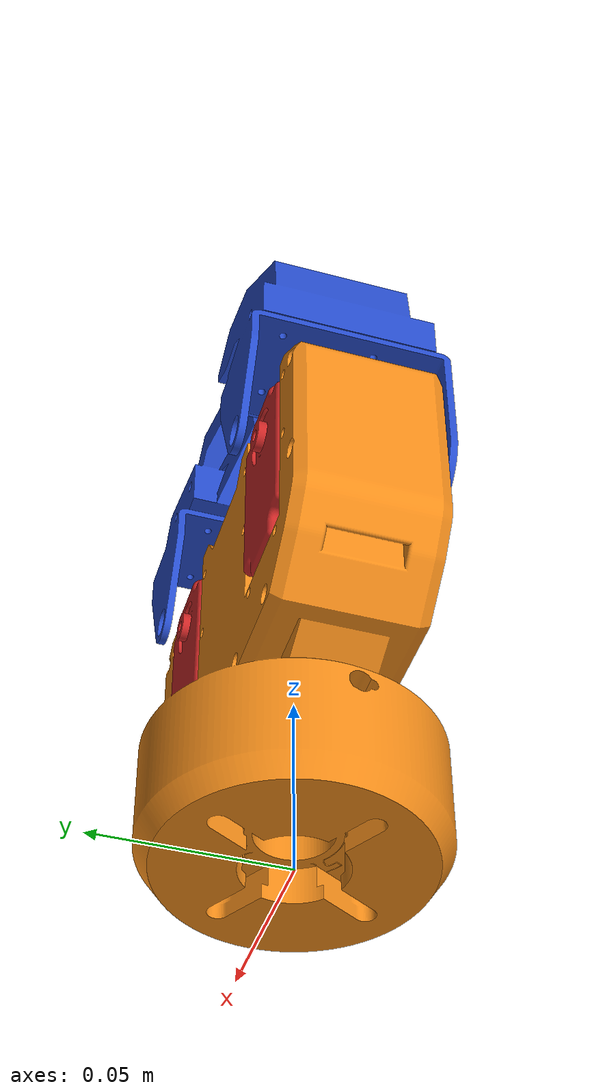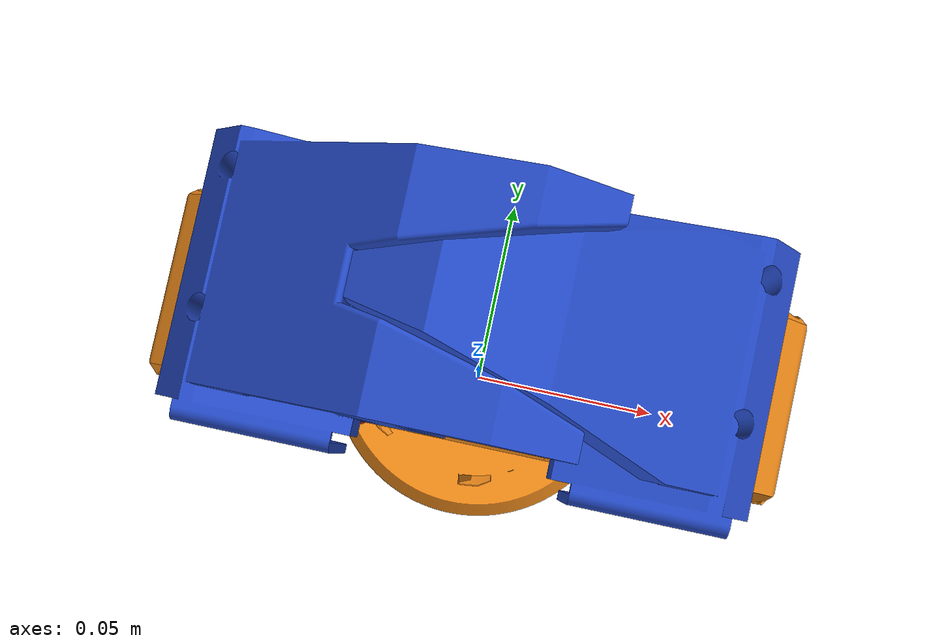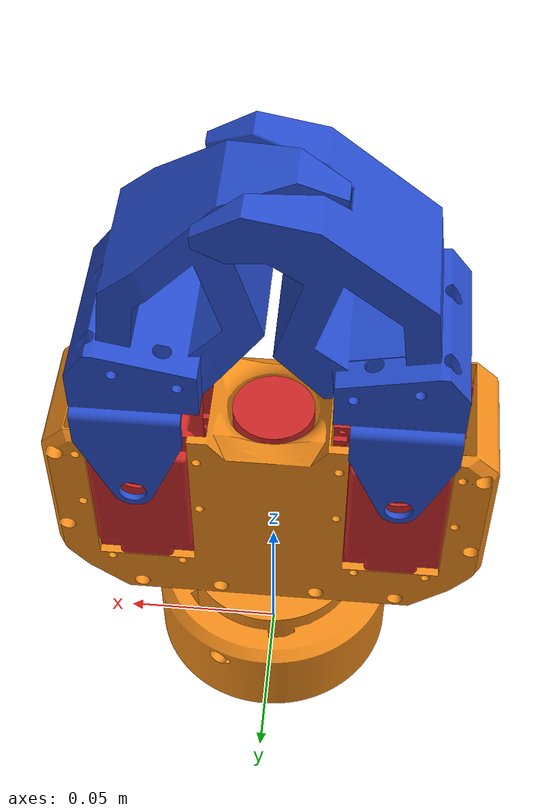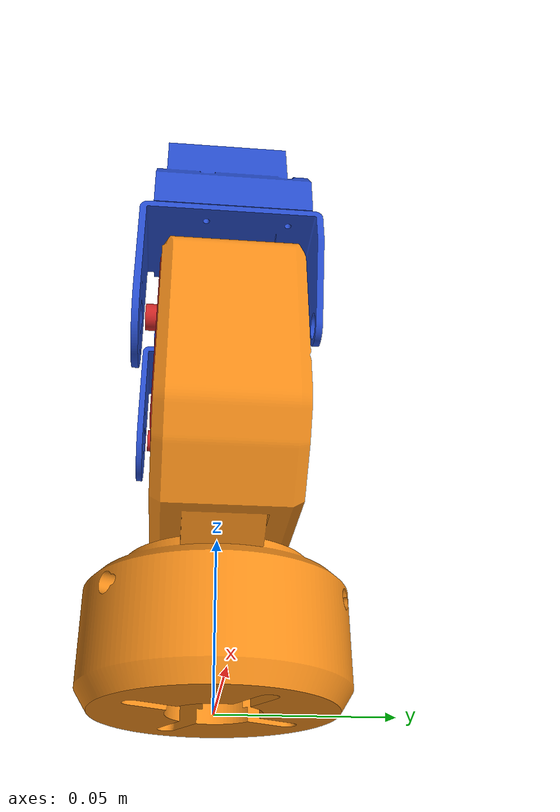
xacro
<?xml version="1.0"?>
<robot name="gripper" xmlns:xacro="http://www.ros.org/wiki/xacro">

  <!-- Constants for robot dimensions -->
  <xacro:property name="PI" value="3.1415926535897931"/>
  <xacro:property name="mass" value="1" /> <!-- arbitrary value for mass -->
  <xacro:property name="width" value="0.1" /> <!-- Square dimensions (widthxwidth) of beams -->
  <xacro:property name="height1" value="2" /> <!-- Link 1 -->
  <xacro:property name="height2" value="1" /> <!-- Link 2 -->
  <xacro:property name="height3" value="1" /> <!-- Link 3 -->
  <xacro:property name="gripper_camera_link" value="0.05" /> <!-- Size of square 'camera' box -->
  <xacro:property name="axel_offset" value="0.05" /> <!-- Space btw top of beam and the each joint -->

  <!-- Import all Gazebo-customization elements, including Gazebo colors -->
  <xacro:include filename="$(find rrbot_description)/urdf/rrbot.gazebo" />
  <!-- Import Rviz colors -->
  <xacro:include filename="$(find rrbot_description)/urdf/materials.xacro" />

  <!-- Used for fixing robot to Gazebo 'base_link' -->
  <link name="world"/>

  <joint name="fixed" type="fixed">
    <parent link="world"/>
    <child link="base"/>
  </joint>

  <!-- Base Link -->
  <link name="base">
    <collision>
      <origin xyz="0 0 0" rpy="${PI/2} 0 0"/>
      <geometry>
	<mesh filename="package://rrbot_description/meshes/Base.stl" scale="0.01 0.01 0.01"/>
      </geometry>
      <material name="orange"/>
    </collision>

    <visual>
      <origin xyz="0 0 0" rpy="${PI/2} 0 0"/>
      <geometry>
	<mesh filename="package://rrbot_description/meshes/Base.stl" scale="0.01 0.01 0.01"/>
      </geometry>
      <material name="orange"/>
    </visual>

    <inertial>
      <origin xyz="0 0 ${height1/2}" rpy="0 0 0"/>
      <mass value="${mass}"/>
      <inertia
	  ixx="${mass / 12.0 * (width*width + height1*height1)}" ixy="0.0" ixz="0.0"
	  iyy="${mass / 12.0 * (height1*height1 + width*width)}" iyz="0.0"
	  izz="${mass / 12.0 * (width*width + width*width)}"/>
    </inertial>
  </link>

  <!-- Middle Link -->
  <link name="left_servo">
    <collision>
      <origin xyz="-0.0375 0 0.104075" rpy="${PI/2} 0 0"/>
      <geometry>
	<mesh filename="package://rrbot_description/meshes/RX-64.stl" scale="0.01 0.01 0.01"/>
      </geometry>
      <material name="red"/>
    </collision>

    <visual>
      <origin xyz="-0.0375 0 0.104075" rpy="${PI/2} 0 0"/>
      <geometry>
	<mesh filename="package://rrbot_description/meshes/RX-64.stl" scale="0.01 0.01 0.01"/>
      </geometry>
      <material name="red"/>
    </visual>

    <inertial>
      <origin xyz="0 0 ${height2/2 - axel_offset}" rpy="0 0 0"/>
      <mass value="${mass}"/>
      <inertia
	  ixx="${mass / 12.0 * (width*width + height2*height2)}" ixy="0.0" ixz="0.0"
	  iyy="${mass / 12.0 * (height2*height2 + width*width)}" iyz="0.0"
	  izz="${mass / 12.0 * (width*width + width*width)}"/>
    </inertial>
  </link>

  <joint name="L_S" type="fixed">
    <parent link="base"/>
    <child link="left_servo"/>
    <origin xyz="0 0 0" rpy="0 0 0"/>
    <axis xyz="0 1 0"/>
    <dynamics damping="0.7"/>
  </joint>

  <link name="right_servo">
    <collision>
      <origin xyz="0.0375 0 0.104075" rpy="${PI/2} 0 0"/>
      <geometry>
	<mesh filename="package://rrbot_description/meshes/RX-64.stl" scale="0.01 0.01 0.01"/>
      </geometry>
      <material name="red"/>
    </collision>

    <visual>
      <origin xyz="0.0375 0 0.104075" rpy="${PI/2} 0 0"/>
      <geometry>
	<mesh filename="package://rrbot_description/meshes/RX-64.stl" scale="0.01 0.01 0.01"/>
      </geometry>
      <material name="red"/>
    </visual>

    <inertial>
      <origin xyz="0 0 ${height2/2 - axel_offset}" rpy="0 0 0"/>
      <mass value="${mass}"/>
      <inertia
	  ixx="${mass / 12.0 * (width*width + height2*height2)}" ixy="0.0" ixz="0.0"
	  iyy="${mass / 12.0 * (height2*height2 + width*width)}" iyz="0.0"
	  izz="${mass / 12.0 * (width*width + width*width)}"/>
    </inertial>
  </link>

  <joint name="R_S" type="fixed">
    <parent link="base"/>
    <child link="right_servo"/>
    <origin xyz="0 0 0" rpy="0 0 0"/>
    <axis xyz="0 1 0"/>
    <dynamics damping="0.7"/>
  </joint>

  <link name="claw_b">
    <collision>
      <origin xyz="0 0 0" rpy="${PI/2} 0 0"/>
      <geometry>
	<mesh filename="package://rrbot_description/meshes/claw_b.stl" scale="0.01 0.01 0.01"/>
      </geometry>
      <material name="blue"/>
    </collision>

    <visual>
      <origin xyz="0 0 0" rpy="${PI/2} 0 0"/>
      <geometry>
	<mesh filename="package://rrbot_description/meshes/claw_b.stl" scale="0.01 0.01 0.01"/>
      </geometry>
      <material name="blue"/>
    </visual>

    <inertial>
      <origin xyz="0 0 ${height2/2 - axel_offset}" rpy="0 0 0"/>
      <mass value="${mass}"/>
      <inertia
	  ixx="${mass / 12.0 * (width*width + height2*height2)}" ixy="0.0" ixz="0.0"
	  iyy="${mass / 12.0 * (height2*height2 + width*width)}" iyz="0.0"
	  izz="${mass / 12.0 * (width*width + width*width)}"/>
    </inertial>
  </link>

  <joint name="joint1" type="continuous">
    <parent link="left_servo"/>
    <child link="claw_b"/>
    <origin xyz="0.0375 0.0 0.104075" rpy="0 0 0"/>
    <axis xyz="0 1 0"/>
    <dynamics damping="0.7"/>
  </joint>

  <link name="claw_a">
    <collision>
      <origin xyz="0 0 0" rpy="${PI/2} 0 0"/>
      <geometry>
	<mesh filename="package://rrbot_description/meshes/claw_a.stl" scale="0.01 0.01 0.01"/>
      </geometry>
      <material name="blue"/>
    </collision>

    <visual>
      <origin xyz="0 0 0" rpy="${PI/2} 0 0"/>
      <geometry>
	<mesh filename="package://rrbot_description/meshes/claw_a.stl" scale="0.01 0.01 0.01"/>
      </geometry>
      <material name="blue"/>
    </visual>

    <inertial>
      <origin xyz="0 0 ${height2/2 - axel_offset}" rpy="0 0 0"/>
      <mass value="${mass}"/>
      <inertia
	  ixx="${mass / 12.0 * (width*width + height2*height2)}" ixy="0.0" ixz="0.0"
	  iyy="${mass / 12.0 * (height2*height2 + width*width)}" iyz="0.0"
	  izz="${mass / 12.0 * (width*width + width*width)}"/>
    </inertial>
  </link>

  <joint name="joint2" type="continuous">
    <parent link="right_servo"/>
    <child link="claw_a"/>
    <origin xyz="-0.0375 0.0 0.104075" rpy="0 0 0"/>
    <axis xyz="0 1 0"/>
    <dynamics damping="0.7"/>
  </joint>

  <joint name="gripper_camera_joint" type="fixed">
    <axis xyz="0 1 0" />
    <origin xyz="0 0 0.12" rpy="0 0 0"/>
    <parent link="base"/>
    <child link="gripper_camera_link"/>
  </joint>

  <!-- Camera -->
  <link name="gripper_camera_link">
    <collision>
      <origin xyz="0 0 -0.025" rpy="0 0 0"/>
      <geometry>
	<cylinder length="0.005" radius="0.015"/>
      </geometry>
    </collision>

    <visual>
      <origin xyz="0 0 -0.01" rpy="0 0 0"/>
      <geometry>
     	<cylinder length="0.005" radius="0.012"/>
      </geometry>
      <material name="red"/>
    </visual>

    <inertial>
      <mass value="1e-5" />
      <origin xyz="0 0 0" rpy="0 0 0"/>
      <inertia ixx="1e-6" ixy="0" ixz="0" iyy="1e-6" iyz="0" izz="1e-6" />
    </inertial>
  </link>

  <!-- generate an optical frame http://www.ros.org/reps/rep-0103.html#suffix-frames
      so that ros and opencv can operate on the camera frame correctly -->
  <joint name="gripper_camera_optical_joint" type="fixed">
    <!-- these values have to be these values otherwise the gazebo camera image
        won't be aligned properly with the frame it is supposedly originating from -->
    <origin xyz="0 0 0" rpy="0 0 0"/>
    <parent link="gripper_camera_link"/>
    <child link="gripper_camera_link_optical"/>
  </joint>

  <link name="gripper_camera_link_optical">
  </link>

  <transmission name="tran1">
    <type>transmission_interface/SimpleTransmission</type>
    <joint name="joint1">
      <hardwareInterface>hardware_interface/EffortJointInterface</hardwareInterface>
    </joint>
    <actuator name="motor1">
      <hardwareInterface>hardware_interface/EffortJointInterface</hardwareInterface>
      <mechanicalReduction>1</mechanicalReduction>
    </actuator>
  </transmission>

  <transmission name="tran2">
    <type>transmission_interface/SimpleTransmission</type>
    <joint name="joint2">
      <hardwareInterface>hardware_interface/EffortJointInterface</hardwareInterface>
    </joint>
    <actuator name="motor2">
      <hardwareInterface>hardware_interface/EffortJointInterface</hardwareInterface>
      <mechanicalReduction>1</mechanicalReduction>
    </actuator>
  </transmission>

</robot>
